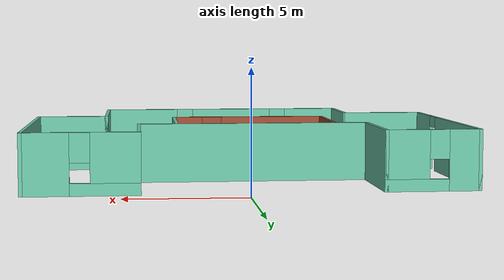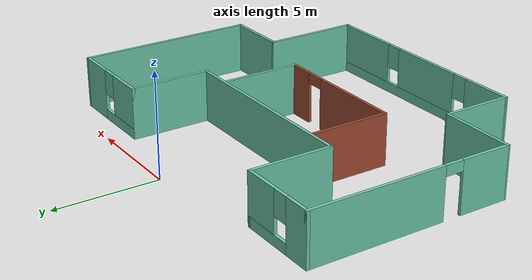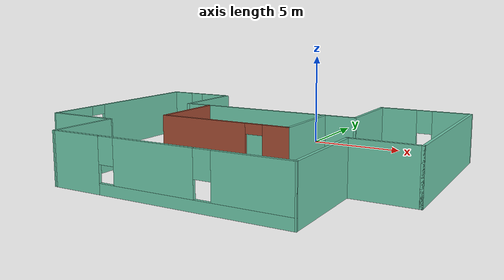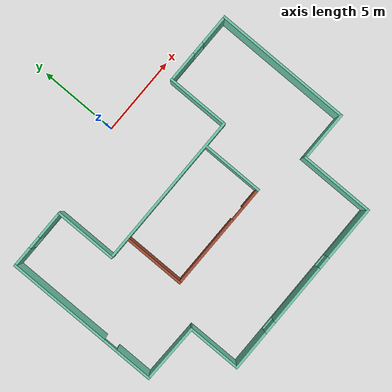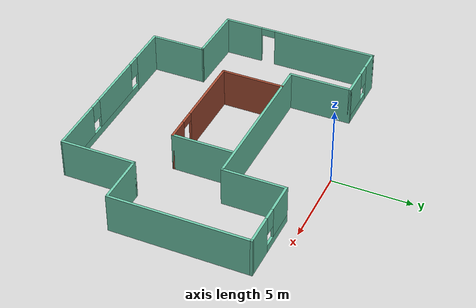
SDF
<?xml version='1.0'?>
<sdf version='1.6'>
  <model name='mybuilding'>
    <pose frame=''>-0.250609 -7.68019 0 0 -0 0</pose>
    <link name='Wall_0'>
      <pose frame=''>-7.22439 6.63019 0 0 -0 0</pose>
      <visual name='Wall_0_Visual_0'>
        <pose frame=''>-1.32037 0 1.25 0 -0 0</pose>
        <geometry>
          <box>
            <size>1.35925 0.15 2.5</size>
          </box>
        </geometry>
        <material>
          <script>
            <uri>file://media/materials/scripts/gazebo.material</uri>
            <name>Gazebo/Grey</name>
          </script>
          <ambient>0.435294 0.796078 0.67451 1</ambient>
        </material>
        <meta>
          <layer>0</layer>
        </meta>
      </visual>
      <collision name='Wall_0_Collision_0'>
        <geometry>
          <box>
            <size>1.35925 0.15 2.5</size>
          </box>
        </geometry>
        <pose frame=''>-1.32037 0 1.25 0 -0 0</pose>
      </collision>
      <visual name='Wall_0_Visual_1'>
        <pose frame=''>0.679626 0 0.25 0 -0 0</pose>
        <geometry>
          <box>
            <size>2.64075 0.15 0.5</size>
          </box>
        </geometry>
        <material>
          <script>
            <uri>file://media/materials/scripts/gazebo.material</uri>
            <name>Gazebo/Grey</name>
          </script>
          <ambient>0.435294 0.796078 0.67451 1</ambient>
        </material>
        <meta>
          <layer>0</layer>
        </meta>
      </visual>
      <collision name='Wall_0_Collision_1'>
        <geometry>
          <box>
            <size>2.64075 0.15 0.5</size>
          </box>
        </geometry>
        <pose frame=''>0.679626 0 0.25 0 -0 0</pose>
      </collision>
      <visual name='Wall_0_Visual_2'>
        <pose frame=''>1.07963 0 1.5 0 -0 0</pose>
        <geometry>
          <box>
            <size>1.84075 0.15 2</size>
          </box>
        </geometry>
        <material>
          <script>
            <uri>file://media/materials/scripts/gazebo.material</uri>
            <name>Gazebo/Grey</name>
          </script>
          <ambient>0.435294 0.796078 0.67451 1</ambient>
        </material>
        <meta>
          <layer>0</layer>
        </meta>
      </visual>
      <collision name='Wall_0_Collision_2'>
        <geometry>
          <box>
            <size>1.84075 0.15 2</size>
          </box>
        </geometry>
        <pose frame=''>1.07963 0 1.5 0 -0 0</pose>
      </collision>
      <visual name='Wall_0_Visual_3'>
        <pose frame=''>-0.240749 0 1.9 0 -0 0</pose>
        <geometry>
          <box>
            <size>0.8 0.15 1.2</size>
          </box>
        </geometry>
        <material>
          <script>
            <uri>file://media/materials/scripts/gazebo.material</uri>
            <name>Gazebo/Grey</name>
          </script>
          <ambient>0.435294 0.796078 0.67451 1</ambient>
        </material>
        <meta>
          <layer>0</layer>
        </meta>
      </visual>
      <collision name='Wall_0_Collision_3'>
        <geometry>
          <box>
            <size>0.8 0.15 1.2</size>
          </box>
        </geometry>
        <pose frame=''>-0.240749 0 1.9 0 -0 0</pose>
      </collision>
    </link>
    <link name='Wall_1'>
      <collision name='Wall_1_Collision'>
        <geometry>
          <box>
            <size>4 0.15 2.5</size>
          </box>
        </geometry>
        <pose frame=''>0 0 1.25 0 -0 0</pose>
      </collision>
      <visual name='Wall_1_Visual'>
        <pose frame=''>0 0 1.25 0 -0 0</pose>
        <geometry>
          <box>
            <size>4 0.15 2.5</size>
          </box>
        </geometry>
        <material>
          <script>
            <uri>file://media/materials/scripts/gazebo.material</uri>
            <name>Gazebo/Grey</name>
          </script>
          <ambient>0.435294 0.796078 0.67451 1</ambient>
        </material>
        <meta>
          <layer>0</layer>
        </meta>
      </visual>
      <pose frame=''>-5.29939 4.70519 0 0 0 -1.5708</pose>
    </link>
    <link name='Wall_10'>
      <pose frame=''>0.280609 -6.59981 0 0 -0 0.005199</pose>
      <visual name='Wall_10_Visual_0'>
        <pose frame=''>-4.54114 0 1.25 0 -0 0</pose>
        <geometry>
          <box>
            <size>2.60788 0.15 2.5</size>
          </box>
        </geometry>
        <material>
          <script>
            <uri>file://media/materials/scripts/gazebo.material</uri>
            <name>Gazebo/Grey</name>
          </script>
          <ambient>0.435294 0.796078 0.67451 1</ambient>
        </material>
        <meta>
          <layer>0</layer>
        </meta>
      </visual>
      <collision name='Wall_10_Collision_0'>
        <geometry>
          <box>
            <size>2.60788 0.15 2.5</size>
          </box>
        </geometry>
        <pose frame=''>-4.54114 0 1.25 0 -0 0</pose>
      </collision>
      <visual name='Wall_10_Visual_1'>
        <pose frame=''>1.30394 0 0.25 0 -0 0</pose>
        <geometry>
          <box>
            <size>9.08228 0.15 0.5</size>
          </box>
        </geometry>
        <material>
          <script>
            <uri>file://media/materials/scripts/gazebo.material</uri>
            <name>Gazebo/Grey</name>
          </script>
          <ambient>0.435294 0.796078 0.67451 1</ambient>
        </material>
        <meta>
          <layer>0</layer>
        </meta>
      </visual>
      <collision name='Wall_10_Collision_1'>
        <geometry>
          <box>
            <size>9.08228 0.15 0.5</size>
          </box>
        </geometry>
        <pose frame=''>1.30394 0 0.25 0 -0 0</pose>
      </collision>
      <visual name='Wall_10_Visual_2'>
        <pose frame=''>-0.463066 0 1.5 0 -0 0</pose>
        <geometry>
          <box>
            <size>3.94827 0.15 2</size>
          </box>
        </geometry>
        <material>
          <script>
            <uri>file://media/materials/scripts/gazebo.material</uri>
            <name>Gazebo/Grey</name>
          </script>
          <ambient>0.435294 0.796078 0.67451 1</ambient>
        </material>
        <meta>
          <layer>0</layer>
        </meta>
      </visual>
      <collision name='Wall_10_Collision_2'>
        <geometry>
          <box>
            <size>3.94827 0.15 2</size>
          </box>
        </geometry>
        <pose frame=''>-0.463066 0 1.5 0 -0 0</pose>
      </collision>
      <visual name='Wall_10_Visual_3'>
        <pose frame=''>4.07807 0 1.5 0 -0 0</pose>
        <geometry>
          <box>
            <size>3.53401 0.15 2</size>
          </box>
        </geometry>
        <material>
          <script>
            <uri>file://media/materials/scripts/gazebo.material</uri>
            <name>Gazebo/Grey</name>
          </script>
          <ambient>0.435294 0.796078 0.67451 1</ambient>
        </material>
        <meta>
          <layer>0</layer>
        </meta>
      </visual>
      <collision name='Wall_10_Collision_3'>
        <geometry>
          <box>
            <size>3.53401 0.15 2</size>
          </box>
        </geometry>
        <pose frame=''>4.07807 0 1.5 0 -0 0</pose>
      </collision>
      <visual name='Wall_10_Visual_4'>
        <pose frame=''>-2.8372 0 1.9 0 -0 0</pose>
        <geometry>
          <box>
            <size>0.8 0.15 1.2</size>
          </box>
        </geometry>
        <material>
          <script>
            <uri>file://media/materials/scripts/gazebo.material</uri>
            <name>Gazebo/Grey</name>
          </script>
          <ambient>0.435294 0.796078 0.67451 1</ambient>
        </material>
        <meta>
          <layer>0</layer>
        </meta>
      </visual>
      <collision name='Wall_10_Collision_4'>
        <geometry>
          <box>
            <size>0.8 0.15 1.2</size>
          </box>
        </geometry>
        <pose frame=''>-2.8372 0 1.9 0 -0 0</pose>
      </collision>
      <visual name='Wall_10_Visual_5'>
        <pose frame=''>1.91107 0 1.9 0 -0 0</pose>
        <geometry>
          <box>
            <size>0.8 0.15 1.2</size>
          </box>
        </geometry>
        <material>
          <script>
            <uri>file://media/materials/scripts/gazebo.material</uri>
            <name>Gazebo/Grey</name>
          </script>
          <ambient>0.435294 0.796078 0.67451 1</ambient>
        </material>
        <meta>
          <layer>0</layer>
        </meta>
      </visual>
      <collision name='Wall_10_Collision_5'>
        <geometry>
          <box>
            <size>0.8 0.15 1.2</size>
          </box>
        </geometry>
        <pose frame=''>1.91107 0 1.9 0 -0 0</pose>
      </collision>
    </link>
    <link name='Wall_11'>
      <collision name='Wall_11_Collision'>
        <geometry>
          <box>
            <size>4.75 0.15 2.5</size>
          </box>
        </geometry>
        <pose frame=''>0 0 1.25 0 -0 0</pose>
      </collision>
      <visual name='Wall_11_Visual'>
        <pose frame=''>0 0 1.25 0 -0 0</pose>
        <geometry>
          <box>
            <size>4.75 0.15 2.5</size>
          </box>
        </geometry>
        <material>
          <script>
            <uri>file://media/materials/scripts/gazebo.material</uri>
            <name>Gazebo/Grey</name>
          </script>
          <ambient>0.435294 0.796078 0.67451 1</ambient>
        </material>
        <meta>
          <layer>0</layer>
        </meta>
      </visual>
      <pose frame=''>6.05061 -4.26981 0 0 -0 1.5708</pose>
    </link>
    <link name='Wall_12'>
      <collision name='Wall_12_Collision'>
        <geometry>
          <box>
            <size>3.25 0.15 2.5</size>
          </box>
        </geometry>
        <pose frame=''>0 0 1.25 0 -0 0</pose>
      </collision>
      <visual name='Wall_12_Visual'>
        <pose frame=''>0 0 1.25 0 -0 0</pose>
        <geometry>
          <box>
            <size>3.25 0.15 2.5</size>
          </box>
        </geometry>
        <material>
          <script>
            <uri>file://media/materials/scripts/gazebo.material</uri>
            <name>Gazebo/Grey</name>
          </script>
          <ambient>0.435294 0.796078 0.67451 1</ambient>
        </material>
        <meta>
          <layer>0</layer>
        </meta>
      </visual>
      <pose frame=''>7.60061 -1.96981 0 0 -0 0</pose>
    </link>
    <link name='Wall_13'>
      <collision name='Wall_13_Collision'>
        <geometry>
          <box>
            <size>8.75 0.15 2.5</size>
          </box>
        </geometry>
        <pose frame=''>0 0 1.25 0 -0 0</pose>
      </collision>
      <visual name='Wall_13_Visual'>
        <pose frame=''>0 0 1.25 0 -0 0</pose>
        <geometry>
          <box>
            <size>8.75 0.15 2.5</size>
          </box>
        </geometry>
        <material>
          <script>
            <uri>file://media/materials/scripts/gazebo.material</uri>
            <name>Gazebo/Grey</name>
          </script>
          <ambient>0.435294 0.796078 0.67451 1</ambient>
        </material>
        <meta>
          <layer>0</layer>
        </meta>
      </visual>
      <pose frame=''>9.15061 2.33019 0 0 -0 1.5708</pose>
    </link>
    <link name='Wall_16'>
      <pose frame=''>6.85061 6.63019 0 0 -0 3.14159</pose>
      <visual name='Wall_16_Visual_0'>
        <pose frame=''>-1.39467 0 1.25 0 -0 0</pose>
        <geometry>
          <box>
            <size>1.96067 0.15 2.5</size>
          </box>
        </geometry>
        <material>
          <script>
            <uri>file://media/materials/scripts/gazebo.material</uri>
            <name>Gazebo/Grey</name>
          </script>
          <ambient>0.435294 0.796078 0.67451 1</ambient>
        </material>
        <meta>
          <layer>0</layer>
        </meta>
      </visual>
      <collision name='Wall_16_Collision_0'>
        <geometry>
          <box>
            <size>1.96067 0.15 2.5</size>
          </box>
        </geometry>
        <pose frame=''>-1.39467 0 1.25 0 -0 0</pose>
      </collision>
      <visual name='Wall_16_Visual_1'>
        <pose frame=''>0.980335 0 0.25 0 -0 0</pose>
        <geometry>
          <box>
            <size>2.78933 0.15 0.5</size>
          </box>
        </geometry>
        <material>
          <script>
            <uri>file://media/materials/scripts/gazebo.material</uri>
            <name>Gazebo/Grey</name>
          </script>
          <ambient>0.435294 0.796078 0.67451 1</ambient>
        </material>
        <meta>
          <layer>0</layer>
        </meta>
      </visual>
      <collision name='Wall_16_Collision_1'>
        <geometry>
          <box>
            <size>2.78933 0.15 0.5</size>
          </box>
        </geometry>
        <pose frame=''>0.980335 0 0.25 0 -0 0</pose>
      </collision>
      <visual name='Wall_16_Visual_2'>
        <pose frame=''>1.38034 0 1.5 0 -0 0</pose>
        <geometry>
          <box>
            <size>1.98933 0.15 2</size>
          </box>
        </geometry>
        <material>
          <script>
            <uri>file://media/materials/scripts/gazebo.material</uri>
            <name>Gazebo/Grey</name>
          </script>
          <ambient>0.435294 0.796078 0.67451 1</ambient>
        </material>
        <meta>
          <layer>0</layer>
        </meta>
      </visual>
      <collision name='Wall_16_Collision_2'>
        <geometry>
          <box>
            <size>1.98933 0.15 2</size>
          </box>
        </geometry>
        <pose frame=''>1.38034 0 1.5 0 -0 0</pose>
      </collision>
      <visual name='Wall_16_Visual_3'>
        <pose frame=''>-0.01433 0 1.9 0 -0 0</pose>
        <geometry>
          <box>
            <size>0.8 0.15 1.2</size>
          </box>
        </geometry>
        <material>
          <script>
            <uri>file://media/materials/scripts/gazebo.material</uri>
            <name>Gazebo/Grey</name>
          </script>
          <ambient>0.435294 0.796078 0.67451 1</ambient>
        </material>
        <meta>
          <layer>0</layer>
        </meta>
      </visual>
      <collision name='Wall_16_Collision_3'>
        <geometry>
          <box>
            <size>0.8 0.15 1.2</size>
          </box>
        </geometry>
        <pose frame=''>-0.01433 0 1.9 0 -0 0</pose>
      </collision>
    </link>
    <link name='Wall_2'>
      <collision name='Wall_2_Collision'>
        <geometry>
          <box>
            <size>10 0.15 2.5</size>
          </box>
        </geometry>
        <pose frame=''>0 0 1.25 0 -0 0</pose>
      </collision>
      <visual name='Wall_2_Visual'>
        <pose frame=''>0 0 1.25 0 -0 0</pose>
        <geometry>
          <box>
            <size>10 0.15 2.5</size>
          </box>
        </geometry>
        <material>
          <script>
            <uri>file://media/materials/scripts/gazebo.material</uri>
            <name>Gazebo/Grey</name>
          </script>
          <ambient>0.435294 0.796078 0.67451 1</ambient>
        </material>
        <meta>
          <layer>0</layer>
        </meta>
      </visual>
      <pose frame=''>-0.374391 2.78019 0 0 -0 0</pose>
    </link>
    <link name='Wall_20'>
      <collision name='Wall_20_Collision'>
        <geometry>
          <box>
            <size>4 0.15 2.5</size>
          </box>
        </geometry>
        <pose frame=''>0 0 1.25 0 -0 0</pose>
      </collision>
      <visual name='Wall_20_Visual'>
        <pose frame=''>0 0 1.25 0 -0 0</pose>
        <geometry>
          <box>
            <size>4 0.15 2.5</size>
          </box>
        </geometry>
        <material>
          <script>
            <uri>file://media/materials/scripts/gazebo.material</uri>
            <name>Gazebo/Bricks</name>
          </script>
          <ambient>0.435294 0.796078 0.67451 1</ambient>
        </material>
        <meta>
          <layer>0</layer>
        </meta>
      </visual>
      <pose frame=''>-3.91339 0.834194 0 0 0 -1.5708</pose>
    </link>
    <link name='Wall_21'>
      <pose frame=''>-0.488391 -1.09081 0 0 -0 0</pose>
      <visual name='Wall_21_Visual_0'>
        <pose frame=''>-1.13745 0 1.25 0 -0 0</pose>
        <geometry>
          <box>
            <size>4.72509 0.15 2.5</size>
          </box>
        </geometry>
        <material>
          <script>
            <uri>file://media/materials/scripts/gazebo.material</uri>
            <name>Gazebo/Bricks</name>
          </script>
          <ambient>0.435294 0.796078 0.67451 1</ambient>
        </material>
        <meta>
          <layer>0</layer>
        </meta>
      </visual>
      <collision name='Wall_21_Collision_0'>
        <geometry>
          <box>
            <size>4.72509 0.15 2.5</size>
          </box>
        </geometry>
        <pose frame=''>-1.13745 0 1.25 0 -0 0</pose>
      </collision>
      <visual name='Wall_21_Visual_1'>
        <pose frame=''>2.81255 0 1.25 0 -0 0</pose>
        <geometry>
          <box>
            <size>1.37491 0.15 2.5</size>
          </box>
        </geometry>
        <material>
          <script>
            <uri>file://media/materials/scripts/gazebo.material</uri>
            <name>Gazebo/Bricks</name>
          </script>
          <ambient>0.435294 0.796078 0.67451 1</ambient>
        </material>
        <meta>
          <layer>0</layer>
        </meta>
      </visual>
      <collision name='Wall_21_Collision_1'>
        <geometry>
          <box>
            <size>1.37491 0.15 2.5</size>
          </box>
        </geometry>
        <pose frame=''>2.81255 0 1.25 0 -0 0</pose>
      </collision>
      <visual name='Wall_21_Visual_2'>
        <pose frame=''>1.67509 0 2.25 0 -0 0</pose>
        <geometry>
          <box>
            <size>0.9 0.15 0.5</size>
          </box>
        </geometry>
        <material>
          <script>
            <uri>file://media/materials/scripts/gazebo.material</uri>
            <name>Gazebo/Bricks</name>
          </script>
          <ambient>0.435294 0.796078 0.67451 1</ambient>
        </material>
        <meta>
          <layer>0</layer>
        </meta>
      </visual>
      <collision name='Wall_21_Collision_2'>
        <geometry>
          <box>
            <size>0.9 0.15 0.5</size>
          </box>
        </geometry>
        <pose frame=''>1.67509 0 2.25 0 -0 0</pose>
      </collision>
    </link>
    <link name='Wall_26'>
      <collision name='Wall_26_Collision'>
        <geometry>
          <box>
            <size>4 0.15 2.5</size>
          </box>
        </geometry>
        <pose frame=''>0 0 1.25 0 -0 0</pose>
      </collision>
      <visual name='Wall_26_Visual'>
        <pose frame=''>0 0 1.25 0 -0 0</pose>
        <geometry>
          <box>
            <size>4 0.15 2.5</size>
          </box>
        </geometry>
        <material>
          <script>
            <uri>file://media/materials/scripts/gazebo.material</uri>
            <name>Gazebo/Grey</name>
          </script>
          <ambient>0.435294 0.796078 0.67451 1</ambient>
        </material>
        <meta>
          <layer>0</layer>
        </meta>
      </visual>
      <pose frame=''>2.93661 0.834194 0 0 -0 1.5708</pose>
    </link>
    <link name='Wall_3'>
      <collision name='Wall_3_Collision'>
        <geometry>
          <box>
            <size>4 0.15 2.5</size>
          </box>
        </geometry>
        <pose frame=''>0 0 1.25 0 -0 0</pose>
      </collision>
      <visual name='Wall_3_Visual'>
        <pose frame=''>0 0 1.25 0 -0 0</pose>
        <geometry>
          <box>
            <size>4 0.15 2.5</size>
          </box>
        </geometry>
        <material>
          <script>
            <uri>file://media/materials/scripts/gazebo.material</uri>
            <name>Gazebo/Grey</name>
          </script>
          <ambient>0.435294 0.796078 0.67451 1</ambient>
        </material>
        <meta>
          <layer>0</layer>
        </meta>
      </visual>
      <pose frame=''>4.55061 4.70519 0 0 -0 1.5708</pose>
    </link>
    <link name='Wall_6'>
      <pose frame=''>-9.14939 1.70519 0 0 0 -1.5708</pose>
      <visual name='Wall_6_Visual_0'>
        <pose frame=''>-1.68817 0 1.25 0 -0 0</pose>
        <geometry>
          <box>
            <size>6.62366 0.15 2.5</size>
          </box>
        </geometry>
        <material>
          <script>
            <uri>file://media/materials/scripts/gazebo.material</uri>
            <name>Gazebo/Grey</name>
          </script>
          <ambient>0.435294 0.796078 0.67451 1</ambient>
        </material>
        <meta>
          <layer>0</layer>
        </meta>
      </visual>
      <collision name='Wall_6_Collision_0'>
        <geometry>
          <box>
            <size>6.62366 0.15 2.5</size>
          </box>
        </geometry>
        <pose frame=''>-1.68817 0 1.25 0 -0 0</pose>
      </collision>
      <visual name='Wall_6_Visual_1'>
        <pose frame=''>3.76183 0 1.25 0 -0 0</pose>
        <geometry>
          <box>
            <size>2.47634 0.15 2.5</size>
          </box>
        </geometry>
        <material>
          <script>
            <uri>file://media/materials/scripts/gazebo.material</uri>
            <name>Gazebo/Grey</name>
          </script>
          <ambient>0.435294 0.796078 0.67451 1</ambient>
        </material>
        <meta>
          <layer>0</layer>
        </meta>
      </visual>
      <collision name='Wall_6_Collision_1'>
        <geometry>
          <box>
            <size>2.47634 0.15 2.5</size>
          </box>
        </geometry>
        <pose frame=''>3.76183 0 1.25 0 -0 0</pose>
      </collision>
      <visual name='Wall_6_Visual_2'>
        <pose frame=''>2.07366 0 2.25 0 -0 0</pose>
        <geometry>
          <box>
            <size>0.9 0.15 0.5</size>
          </box>
        </geometry>
        <material>
          <script>
            <uri>file://media/materials/scripts/gazebo.material</uri>
            <name>Gazebo/Grey</name>
          </script>
          <ambient>0.435294 0.796078 0.67451 1</ambient>
        </material>
        <meta>
          <layer>0</layer>
        </meta>
      </visual>
      <collision name='Wall_6_Collision_2'>
        <geometry>
          <box>
            <size>0.9 0.15 0.5</size>
          </box>
        </geometry>
        <pose frame=''>2.07366 0 2.25 0 -0 0</pose>
      </collision>
    </link>
    <link name='Wall_8'>
      <collision name='Wall_8_Collision'>
        <geometry>
          <box>
            <size>3.81049 0.15 2.5</size>
          </box>
        </geometry>
        <pose frame=''>0 0 1.25 0 -0 0</pose>
      </collision>
      <visual name='Wall_8_Visual'>
        <pose frame=''>0 0 1.25 0 -0 0</pose>
        <geometry>
          <box>
            <size>3.81049 0.15 2.5</size>
          </box>
        </geometry>
        <material>
          <script>
            <uri>file://media/materials/scripts/gazebo.material</uri>
            <name>Gazebo/Grey</name>
          </script>
          <ambient>0.435294 0.796078 0.67451 1</ambient>
        </material>
        <meta>
          <layer>0</layer>
        </meta>
      </visual>
      <pose frame=''>-7.31939 -3.24981 0 0 0 -0.016392</pose>
    </link>
    <link name='Wall_9'>
      <collision name='Wall_9_Collision'>
        <geometry>
          <box>
            <size>3.5 0.15 2.5</size>
          </box>
        </geometry>
        <pose frame=''>0 0 1.25 0 -0 0</pose>
      </collision>
      <visual name='Wall_9_Visual'>
        <pose frame=''>0 0 1.25 0 -0 0</pose>
        <geometry>
          <box>
            <size>3.5 0.15 2.5</size>
          </box>
        </geometry>
        <material>
          <script>
            <uri>file://media/materials/scripts/gazebo.material</uri>
            <name>Gazebo/Grey</name>
          </script>
          <ambient>0.435294 0.796078 0.67451 1</ambient>
        </material>
        <meta>
          <layer>0</layer>
        </meta>
      </visual>
      <pose frame=''>-5.48939 -4.95481 0 0 0 -1.5708</pose>
    </link>
    <static>1</static>
  </model>
</sdf>
